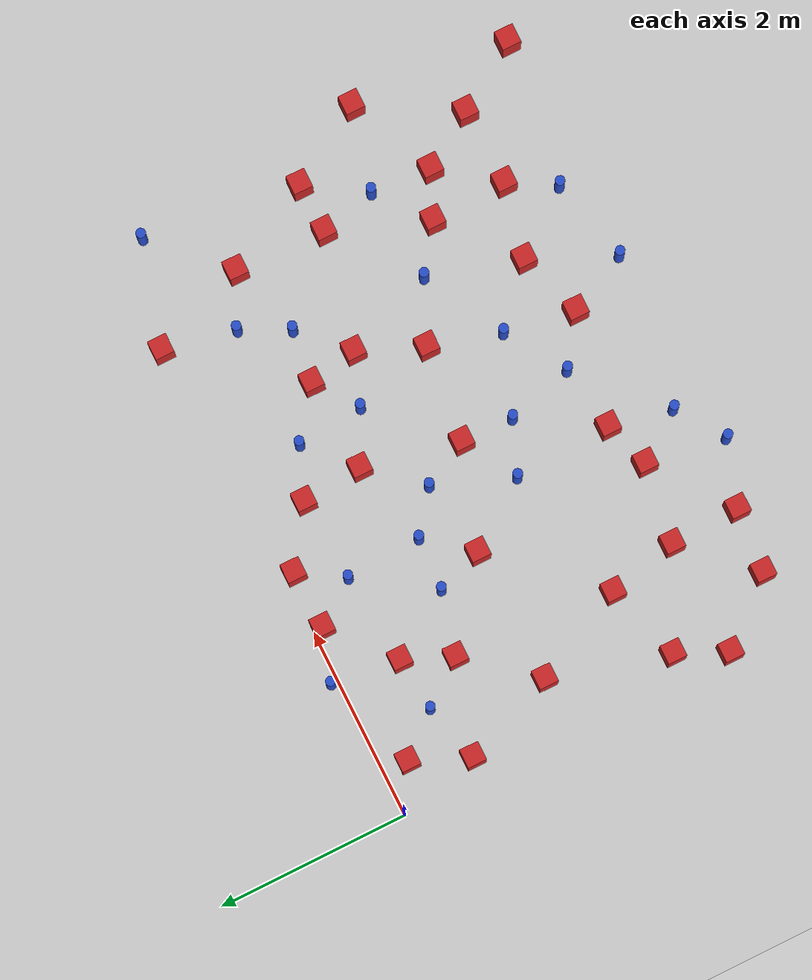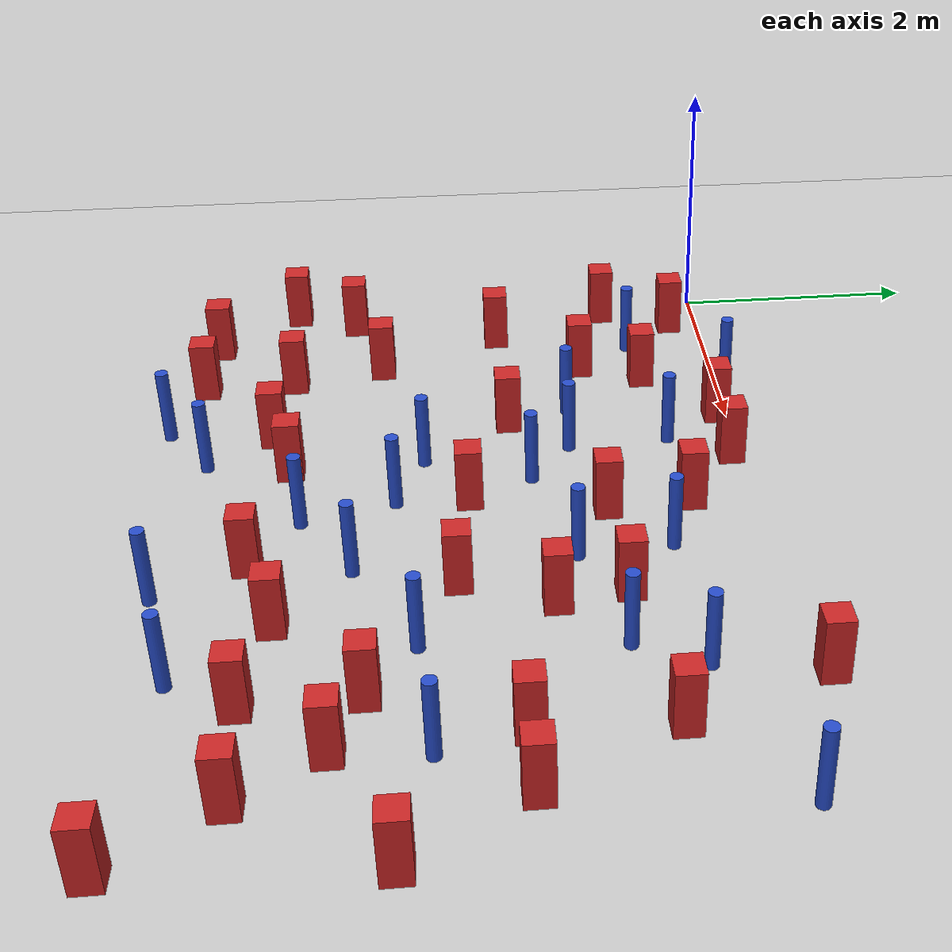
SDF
<sdf version="1.6">
 <world name="default">
  <model name="ground_plane">
   <static>1</static>
   <link name="link">
    <collision name="collision">
     <geometry><plane><normal>0 0 1</normal><size>100 100</size></plane></geometry>
     <surface><friction><ode><mu>100</mu><mu2>50</mu2></ode></friction></surface>
    </collision>
    <visual name="visual">
     <cast_shadows>0</cast_shadows>
     <geometry><plane><normal>0 0 1</normal><size>100 100</size></plane></geometry>
     <material>
      <ambient>1.0 1.0 1.0 1.0</ambient>
      <diffuse>0.8 0.8 0.8 1.0</diffuse>
      <specular>0.01 0.01 0.01 1.000000</specular>
     </material>
    </visual>
   </link>
  </model>
  <model name="NamedLocations">
   <static>true</static>
   <link name="DefaultStart"><pose>8.5 0 0 0 0 3.14</pose></link>
  </model>
  <model name="square_post_obstacle1">
   <static>true</static>
   <pose>2.530450691 -3.46873330275 -6.11067671241e-07 -5.50515727128e-06 -8.79689657224e-07 2.37013304536e-05</pose>
   <link name="link">
    <pose>0 0 0.25 0 -0 0</pose>
    <inertial>
     <mass>100</mass>
     <inertia>
      <ixx>0.166667</ixx>
      <ixy>0</ixy>
      <ixz>0</ixz>
      <iyy>0.166667</iyy>
      <iyz>0</iyz>
      <izz>0.166667</izz>
     </inertia>
    </inertial>
    <collision name="collision"><geometry><box><size>.2 .2 .5</size></box></geometry></collision>
    <visual name="visual">
     <geometry><box><size>.2 .2 .5</size></box></geometry>
     <material>
      <script><name>Gazebo/Red</name><uri>file://media/materials/scripts/gazebo.material</uri></script>
     </material>
    </visual>
   </link>
  </model>
  <model name="square_post_obstacle3">
   <static>true</static>
   <pose>5.13669039034 -3.62520895391 -6.11067671241e-07 -5.50515727128e-06 -8.79689657224e-07 2.37013304536e-05</pose>
   <link name="link">
    <pose>0 0 0.25 0 -0 0</pose>
    <inertial>
     <mass>100</mass>
     <inertia>
      <ixx>0.166667</ixx>
      <ixy>0</ixy>
      <ixz>0</ixz>
      <iyy>0.166667</iyy>
      <iyz>0</iyz>
      <izz>0.166667</izz>
     </inertia>
    </inertial>
    <collision name="collision"><geometry><box><size>.2 .2 .5</size></box></geometry></collision>
    <visual name="visual">
     <geometry><box><size>.2 .2 .5</size></box></geometry>
     <material>
      <script><name>Gazebo/Red</name><uri>file://media/materials/scripts/gazebo.material</uri></script>
     </material>
    </visual>
   </link>
  </model>
  <model name="pole_obstacle9">
   <static>true</static>
   <pose>3.01143764295 -2.66555143972 -9.47619616065e-06 5.49618799737e-07 2.36310414051e-07 -1.55090534807e-07</pose>
   <link name="link">
    <pose>0 0 0.3 0 -0 0</pose>
    <inertial>
     <mass>1</mass>
     <inertia><ixx>0.145833</ixx><ixy>0</ixy><ixz>0</ixz><iyy>0.145833</iyy><iyz>0</iyz><izz>0.125</izz></inertia>
    </inertial>
    <collision name="collision">
     <geometry><cylinder><radius>0.05</radius><length>.6</length></cylinder></geometry>
    </collision>
    <visual name="visual">
     <geometry><cylinder><radius>0.05</radius><length>.6</length></cylinder></geometry>
     <material>
      <script><name>Gazebo/Blue</name><uri>file://media/materials/scripts/gazebo.material</uri></script>
     </material>
    </visual>
   </link>
  </model>
  <model name="square_post_obstacle18">
   <static>true</static>
   <pose>5.49157595829 -1.83002905532 -6.11067671241e-07 -5.50515727128e-06 -8.79689657224e-07 2.37013304536e-05</pose>
   <link name="link">
    <pose>0 0 0.25 0 -0 0</pose>
    <inertial>
     <mass>100</mass>
     <inertia>
      <ixx>0.166667</ixx>
      <ixy>0</ixy>
      <ixz>0</ixz>
      <iyy>0.166667</iyy>
      <iyz>0</iyz>
      <izz>0.166667</izz>
     </inertia>
    </inertial>
    <collision name="collision"><geometry><box><size>.2 .2 .5</size></box></geometry></collision>
    <visual name="visual">
     <geometry><box><size>.2 .2 .5</size></box></geometry>
     <material>
      <script><name>Gazebo/Red</name><uri>file://media/materials/scripts/gazebo.material</uri></script>
     </material>
    </visual>
   </link>
  </model>
  <model name="pole_obstacle10">
   <static>true</static>
   <pose>3.98855867331 -4.32102343324 -9.47619616065e-06 5.49618799737e-07 2.36310414049e-07 -1.55090534808e-07</pose>
   <link name="link">
    <pose>0 0 0.3 0 -0 0</pose>
    <inertial>
     <mass>1</mass>
     <inertia><ixx>0.145833</ixx><ixy>0</ixy><ixz>0</ixz><iyy>0.145833</iyy><iyz>0</iyz><izz>0.125</izz></inertia>
    </inertial>
    <collision name="collision">
     <geometry><cylinder><radius>0.05</radius><length>.6</length></cylinder></geometry>
    </collision>
    <visual name="visual">
     <geometry><cylinder><radius>0.05</radius><length>.6</length></cylinder></geometry>
     <material>
      <script><name>Gazebo/Blue</name><uri>file://media/materials/scripts/gazebo.material</uri></script>
     </material>
    </visual>
   </link>
  </model>
  <model name="square_post_obstacle22">
   <static>true</static>
   <pose>0.462626099444 -0.256833321425 -6.11067671241e-07 -5.50515727128e-06 -8.79689657224e-07 2.37013304536e-05</pose>
   <link name="link">
    <pose>0 0 0.25 0 -0 0</pose>
    <inertial>
     <mass>100</mass>
     <inertia>
      <ixx>0.166667</ixx>
      <ixy>0</ixy>
      <ixz>0</ixz>
      <iyy>0.166667</iyy>
      <iyz>0</iyz>
      <izz>0.166667</izz>
     </inertia>
    </inertial>
    <collision name="collision"><geometry><box><size>.2 .2 .5</size></box></geometry></collision>
    <visual name="visual">
     <geometry><box><size>.2 .2 .5</size></box></geometry>
     <material>
      <script><name>Gazebo/Red</name><uri>file://media/materials/scripts/gazebo.material</uri></script>
     </material>
    </visual>
   </link>
  </model>
  <model name="pole_obstacle18">
   <static>true</static>
   <pose>4.64653328967 -2.50887436375 -9.47619616065e-06 5.49618799738e-07 2.36310414051e-07 -1.55090534805e-07</pose>
   <link name="link">
    <pose>0 0 0.3 0 -0 0</pose>
    <inertial>
     <mass>1</mass>
     <inertia><ixx>0.145833</ixx><ixy>0</ixy><ixz>0</ixz><iyy>0.145833</iyy><iyz>0</iyz><izz>0.125</izz></inertia>
    </inertial>
    <collision name="collision">
     <geometry><cylinder><radius>0.05</radius><length>.6</length></cylinder></geometry>
    </collision>
    <visual name="visual">
     <geometry><cylinder><radius>0.05</radius><length>.6</length></cylinder></geometry>
     <material>
      <script><name>Gazebo/Blue</name><uri>file://media/materials/scripts/gazebo.material</uri></script>
     </material>
    </visual>
   </link>
  </model>
  <model name="square_post_obstacle28">
   <static>true</static>
   <pose>3.1888105255 -0.476399686188 -6.11067671241e-07 -5.50515727128e-06 -8.79689657224e-07 2.37013304536e-05</pose>
   <link name="link">
    <pose>0 0 0.25 0 -0 0</pose>
    <inertial>
     <mass>100</mass>
     <inertia>
      <ixx>0.166667</ixx>
      <ixy>0</ixy>
      <ixz>0</ixz>
      <iyy>0.166667</iyy>
      <iyz>0</iyz>
      <izz>0.166667</izz>
     </inertia>
    </inertial>
    <collision name="collision"><geometry><box><size>.2 .2 .5</size></box></geometry></collision>
    <visual name="visual">
     <geometry><box><size>.2 .2 .5</size></box></geometry>
     <material>
      <script><name>Gazebo/Red</name><uri>file://media/materials/scripts/gazebo.material</uri></script>
     </material>
    </visual>
   </link>
  </model>
  <model name="pole_obstacle20">
   <static>true</static>
   <pose>1.46559739499 0.0808924018977 -9.47619616065e-06 5.49618799737e-07 2.36310414064e-07 -1.55090534797e-07</pose>
   <link name="link">
    <pose>0 0 0.3 0 -0 0</pose>
    <inertial>
     <mass>1</mass>
     <inertia><ixx>0.145833</ixx><ixy>0</ixy><ixz>0</ixz><iyy>0.145833</iyy><iyz>0</iyz><izz>0.125</izz></inertia>
    </inertial>
    <collision name="collision">
     <geometry><cylinder><radius>0.05</radius><length>.6</length></cylinder></geometry>
    </collision>
    <visual name="visual">
     <geometry><cylinder><radius>0.05</radius><length>.6</length></cylinder></geometry>
     <material>
      <script><name>Gazebo/Blue</name><uri>file://media/materials/scripts/gazebo.material</uri></script>
     </material>
    </visual>
   </link>
  </model>
  <model name="pole_obstacle28">
   <static>true</static>
   <pose>2.39489587303 -4.11712145658 -9.47619616065e-06 5.49618799738e-07 2.3631041406e-07 -1.55090534801e-07</pose>
   <link name="link">
    <pose>0 0 0.3 0 -0 0</pose>
    <inertial>
     <mass>1</mass>
     <inertia><ixx>0.145833</ixx><ixy>0</ixy><ixz>0</ixz><iyy>0.145833</iyy><iyz>0</iyz><izz>0.125</izz></inertia>
    </inertial>
    <collision name="collision">
     <geometry><cylinder><radius>0.05</radius><length>.6</length></cylinder></geometry>
    </collision>
    <visual name="visual">
     <geometry><cylinder><radius>0.05</radius><length>.6</length></cylinder></geometry>
     <material>
      <script><name>Gazebo/Blue</name><uri>file://media/materials/scripts/gazebo.material</uri></script>
     </material>
    </visual>
   </link>
  </model>
  <model name="pole_obstacle33">
   <static>true</static>
   <pose>2.36155503035 -1.31964789753 -9.47619616065e-06 5.49618799737e-07 2.36310414072e-07 -1.55090534793e-07</pose>
   <link name="link">
    <pose>0 0 0.3 0 -0 0</pose>
    <inertial>
     <mass>1</mass>
     <inertia><ixx>0.145833</ixx><ixy>0</ixy><ixz>0</ixz><iyy>0.145833</iyy><iyz>0</iyz><izz>0.125</izz></inertia>
    </inertial>
    <collision name="collision">
     <geometry><cylinder><radius>0.05</radius><length>.6</length></cylinder></geometry>
    </collision>
    <visual name="visual">
     <geometry><cylinder><radius>0.05</radius><length>.6</length></cylinder></geometry>
     <material>
      <script><name>Gazebo/Blue</name><uri>file://media/materials/scripts/gazebo.material</uri></script>
     </material>
    </visual>
   </link>
  </model>
  <model name="square_post_obstacle35">
   <static>true</static>
   <pose>5.9378352784 -3.60017342188 -6.11067671241e-07 -5.50515727128e-06 -8.79689657224e-07 2.37013304536e-05</pose>
   <link name="link">
    <pose>0 0 0.25 0 -0 0</pose>
    <inertial>
     <mass>100</mass>
     <inertia>
      <ixx>0.166667</ixx>
      <ixy>0</ixy>
      <ixz>0</ixz>
      <iyy>0.166667</iyy>
      <iyz>0</iyz>
      <izz>0.166667</izz>
     </inertia>
    </inertial>
    <collision name="collision"><geometry><box><size>.2 .2 .5</size></box></geometry></collision>
    <visual name="visual">
     <geometry><box><size>.2 .2 .5</size></box></geometry>
     <material>
      <script><name>Gazebo/Red</name><uri>file://media/materials/scripts/gazebo.material</uri></script>
     </material>
    </visual>
   </link>
  </model>
  <model name="square_post_obstacle38">
   <static>true</static>
   <pose>3.03342780745 -2.11965863603 -6.11067671241e-07 -5.50515727128e-06 -8.79689657224e-07 2.37013304536e-05</pose>
   <link name="link">
    <pose>0 0 0.25 0 -0 0</pose>
    <inertial>
     <mass>100</mass>
     <inertia>
      <ixx>0.166667</ixx>
      <ixy>0</ixy>
      <ixz>0</ixz>
      <iyy>0.166667</iyy>
      <iyz>0</iyz>
      <izz>0.166667</izz>
     </inertia>
    </inertial>
    <collision name="collision"><geometry><box><size>.2 .2 .5</size></box></geometry></collision>
    <visual name="visual">
     <geometry><box><size>.2 .2 .5</size></box></geometry>
     <material>
      <script><name>Gazebo/Red</name><uri>file://media/materials/scripts/gazebo.material</uri></script>
     </material>
    </visual>
   </link>
  </model>
  <model name="square_post_obstacle48">
   <static>true</static>
   <pose>0.214995687246 -0.84424231636 -6.11067671241e-07 -5.50515727128e-06 -8.79689657224e-07 2.37013304536e-05</pose>
   <link name="link">
    <pose>0 0 0.25 0 -0 0</pose>
    <inertial>
     <mass>100</mass>
     <inertia>
      <ixx>0.166667</ixx>
      <ixy>0</ixy>
      <ixz>0</ixz>
      <iyy>0.166667</iyy>
      <iyz>0</iyz>
      <izz>0.166667</izz>
     </inertia>
    </inertial>
    <collision name="collision"><geometry><box><size>.2 .2 .5</size></box></geometry></collision>
    <visual name="visual">
     <geometry><box><size>.2 .2 .5</size></box></geometry>
     <material>
      <script><name>Gazebo/Red</name><uri>file://media/materials/scripts/gazebo.material</uri></script>
     </material>
    </visual>
   </link>
  </model>
  <model name="square_post_obstacle51">
   <static>true</static>
   <pose>1.9908792539 -1.77615384395 -6.11067671241e-07 -5.50515727128e-06 -8.79689657224e-07 2.37013304536e-05</pose>
   <link name="link">
    <pose>0 0 0.25 0 -0 0</pose>
    <inertial>
     <mass>100</mass>
     <inertia>
      <ixx>0.166667</ixx>
      <ixy>0</ixy>
      <ixz>0</ixz>
      <iyy>0.166667</iyy>
      <iyz>0</iyz>
      <izz>0.166667</izz>
     </inertia>
    </inertial>
    <collision name="collision"><geometry><box><size>.2 .2 .5</size></box></geometry></collision>
    <visual name="visual">
     <geometry><box><size>.2 .2 .5</size></box></geometry>
     <material>
      <script><name>Gazebo/Red</name><uri>file://media/materials/scripts/gazebo.material</uri></script>
     </material>
    </visual>
   </link>
  </model>
  <model name="square_post_obstacle54">
   <static>true</static>
   <pose>6.3778067706 -4.2810340487 -6.11067671241e-07 -5.50515727128e-06 -8.79689657224e-07 2.37013304536e-05</pose>
   <link name="link">
    <pose>0 0 0.25 0 -0 0</pose>
    <inertial>
     <mass>100</mass>
     <inertia>
      <ixx>0.166667</ixx>
      <ixy>0</ixy>
      <ixz>0</ixz>
      <iyy>0.166667</iyy>
      <iyz>0</iyz>
      <izz>0.166667</izz>
     </inertia>
    </inertial>
    <collision name="collision"><geometry><box><size>.2 .2 .5</size></box></geometry></collision>
    <visual name="visual">
     <geometry><box><size>.2 .2 .5</size></box></geometry>
     <material>
      <script><name>Gazebo/Red</name><uri>file://media/materials/scripts/gazebo.material</uri></script>
     </material>
    </visual>
   </link>
  </model>
  <model name="pole_obstacle54">
   <static>true</static>
   <pose>3.19982292929 -3.35588220677 -9.47619616065e-06 5.49618799737e-07 2.36310414051e-07 -1.55090534807e-07</pose>
   <link name="link">
    <pose>0 0 0.3 0 -0 0</pose>
    <inertial>
     <mass>1</mass>
     <inertia><ixx>0.145833</ixx><ixy>0</ixy><ixz>0</ixz><iyy>0.145833</iyy><iyz>0</iyz><izz>0.125</izz></inertia>
    </inertial>
    <collision name="collision">
     <geometry><cylinder><radius>0.05</radius><length>.6</length></cylinder></geometry>
    </collision>
    <visual name="visual">
     <geometry><cylinder><radius>0.05</radius><length>.6</length></cylinder></geometry>
     <material>
      <script><name>Gazebo/Blue</name><uri>file://media/materials/scripts/gazebo.material</uri></script>
     </material>
    </visual>
   </link>
  </model>
  <model name="square_post_obstacle59">
   <static>true</static>
   <pose>2.04488197344 -3.62995855583 -6.11067671241e-07 -5.50515727128e-06 -8.79689657224e-07 2.37013304536e-05</pose>
   <link name="link">
    <pose>0 0 0.25 0 -0 0</pose>
    <inertial>
     <mass>100</mass>
     <inertia>
      <ixx>0.166667</ixx>
      <ixy>0</ixy>
      <ixz>0</ixz>
      <iyy>0.166667</iyy>
      <iyz>0</iyz>
      <izz>0.166667</izz>
     </inertia>
    </inertial>
    <collision name="collision"><geometry><box><size>.2 .2 .5</size></box></geometry></collision>
    <visual name="visual">
     <geometry><box><size>.2 .2 .5</size></box></geometry>
     <material>
      <script><name>Gazebo/Red</name><uri>file://media/materials/scripts/gazebo.material</uri></script>
     </material>
    </visual>
   </link>
  </model>
  <model name="pole_obstacle56">
   <static>true</static>
   <pose>2.77775229552 -1.63848089465 -9.47619616065e-06 5.49618799737e-07 2.36310414072e-07 -1.55090534793e-07</pose>
   <link name="link">
    <pose>0 0 0.3 0 -0 0</pose>
    <inertial>
     <mass>1</mass>
     <inertia><ixx>0.145833</ixx><ixy>0</ixy><ixz>0</ixz><iyy>0.145833</iyy><iyz>0</iyz><izz>0.125</izz></inertia>
    </inertial>
    <collision name="collision">
     <geometry><cylinder><radius>0.05</radius><length>.6</length></cylinder></geometry>
    </collision>
    <visual name="visual">
     <geometry><cylinder><radius>0.05</radius><length>.6</length></cylinder></geometry>
     <material>
      <script><name>Gazebo/Blue</name><uri>file://media/materials/scripts/gazebo.material</uri></script>
     </material>
    </visual>
   </link>
  </model>
  <model name="pole_obstacle66">
   <static>true</static>
   <pose>4.86580352075 -4.10169592997 -9.47619616065e-06 5.49618799737e-07 2.36310414037e-07 -1.55090534814e-07</pose>
   <link name="link">
    <pose>0 0 0.3 0 -0 0</pose>
    <inertial>
     <mass>1</mass>
     <inertia><ixx>0.145833</ixx><ixy>0</ixy><ixz>0</ixz><iyy>0.145833</iyy><iyz>0</iyz><izz>0.125</izz></inertia>
    </inertial>
    <collision name="collision">
     <geometry><cylinder><radius>0.05</radius><length>.6</length></cylinder></geometry>
    </collision>
    <visual name="visual">
     <geometry><cylinder><radius>0.05</radius><length>.6</length></cylinder></geometry>
     <material>
      <script><name>Gazebo/Blue</name><uri>file://media/materials/scripts/gazebo.material</uri></script>
     </material>
    </visual>
   </link>
  </model>
  <model name="square_post_obstacle70">
   <static>true</static>
   <pose>0.579308667818 -4.182951804 -6.11067671241e-07 -5.50515727128e-06 -8.79689657224e-07 2.37013304536e-05</pose>
   <link name="link">
    <pose>0 0 0.25 0 -0 0</pose>
    <inertial>
     <mass>100</mass>
     <inertia>
      <ixx>0.166667</ixx>
      <ixy>0</ixy>
      <ixz>0</ixz>
      <iyy>0.166667</iyy>
      <iyz>0</iyz>
      <izz>0.166667</izz>
     </inertia>
    </inertial>
    <collision name="collision"><geometry><box><size>.2 .2 .5</size></box></geometry></collision>
    <visual name="visual">
     <geometry><box><size>.2 .2 .5</size></box></geometry>
     <material>
      <script><name>Gazebo/Red</name><uri>file://media/materials/scripts/gazebo.material</uri></script>
     </material>
    </visual>
   </link>
  </model>
  <model name="pole_obstacle67">
   <static>true</static>
   <pose>3.77022128287 -1.37901961 -9.47619616065e-06 5.49618799737e-07 2.36310414072e-07 -1.55090534793e-07</pose>
   <link name="link">
    <pose>0 0 0.3 0 -0 0</pose>
    <inertial>
     <mass>1</mass>
     <inertia><ixx>0.145833</ixx><ixy>0</ixy><ixz>0</ixz><iyy>0.145833</iyy><iyz>0</iyz><izz>0.125</izz></inertia>
    </inertial>
    <collision name="collision">
     <geometry><cylinder><radius>0.05</radius><length>.6</length></cylinder></geometry>
    </collision>
    <visual name="visual">
     <geometry><cylinder><radius>0.05</radius><length>.6</length></cylinder></geometry>
     <material>
      <script><name>Gazebo/Blue</name><uri>file://media/materials/scripts/gazebo.material</uri></script>
     </material>
    </visual>
   </link>
  </model>
  <model name="pole_obstacle79">
   <static>true</static>
   <pose>3.8079375028 -2.96117190061 -9.47619616065e-06 5.49618799737e-07 2.36310414051e-07 -1.55090534807e-07</pose>
   <link name="link">
    <pose>0 0 0.3 0 -0 0</pose>
    <inertial>
     <mass>1</mass>
     <inertia><ixx>0.145833</ixx><ixy>0</ixy><ixz>0</ixz><iyy>0.145833</iyy><iyz>0</iyz><izz>0.125</izz></inertia>
    </inertial>
    <collision name="collision">
     <geometry><cylinder><radius>0.05</radius><length>.6</length></cylinder></geometry>
    </collision>
    <visual name="visual">
     <geometry><cylinder><radius>0.05</radius><length>.6</length></cylinder></geometry>
     <material>
      <script><name>Gazebo/Blue</name><uri>file://media/materials/scripts/gazebo.material</uri></script>
     </material>
    </visual>
   </link>
  </model>
  <model name="square_post_obstacle78">
   <static>true</static>
   <pose>4.02075072889 -2.2270808271 -6.11067671241e-07 -5.50515727128e-06 -8.79689657224e-07 2.37013304536e-05</pose>
   <link name="link">
    <pose>0 0 0.25 0 -0 0</pose>
    <inertial>
     <mass>100</mass>
     <inertia>
      <ixx>0.166667</ixx>
      <ixy>0</ixy>
      <ixz>0</ixz>
      <iyy>0.166667</iyy>
      <iyz>0</iyz>
      <izz>0.166667</izz>
     </inertia>
    </inertial>
    <collision name="collision"><geometry><box><size>.2 .2 .5</size></box></geometry></collision>
    <visual name="visual">
     <geometry><box><size>.2 .2 .5</size></box></geometry>
     <material>
      <script><name>Gazebo/Red</name><uri>file://media/materials/scripts/gazebo.material</uri></script>
     </material>
    </visual>
   </link>
  </model>
  <model name="pole_obstacle96">
   <static>true</static>
   <pose>0.817765265633 -0.680122438797 -9.47619616065e-06 5.49618799737e-07 2.36310414058e-07 -1.55090534802e-07</pose>
   <link name="link">
    <pose>0 0 0.3 0 -0 0</pose>
    <inertial>
     <mass>1</mass>
     <inertia><ixx>0.145833</ixx><ixy>0</ixy><ixz>0</ixz><iyy>0.145833</iyy><iyz>0</iyz><izz>0.125</izz></inertia>
    </inertial>
    <collision name="collision">
     <geometry><cylinder><radius>0.05</radius><length>.6</length></cylinder></geometry>
    </collision>
    <visual name="visual">
     <geometry><cylinder><radius>0.05</radius><length>.6</length></cylinder></geometry>
     <material>
      <script><name>Gazebo/Blue</name><uri>file://media/materials/scripts/gazebo.material</uri></script>
     </material>
    </visual>
   </link>
  </model>
  <model name="square_post_obstacle86">
   <static>true</static>
   <pose>4.37162158895 -3.46478738993 -6.11067671241e-07 -5.50515727128e-06 -8.79689657224e-07 2.37013304536e-05</pose>
   <link name="link">
    <pose>0 0 0.25 0 -0 0</pose>
    <inertial>
     <mass>100</mass>
     <inertia>
      <ixx>0.166667</ixx>
      <ixy>0</ixy>
      <ixz>0</ixz>
      <iyy>0.166667</iyy>
      <iyz>0</iyz>
      <izz>0.166667</izz>
     </inertia>
    </inertial>
    <collision name="collision"><geometry><box><size>.2 .2 .5</size></box></geometry></collision>
    <visual name="visual">
     <geometry><box><size>.2 .2 .5</size></box></geometry>
     <material>
      <script><name>Gazebo/Red</name><uri>file://media/materials/scripts/gazebo.material</uri></script>
     </material>
    </visual>
   </link>
  </model>
  <model name="pole_obstacle105">
   <static>true</static>
   <pose>3.70730179866 -0.684407752804 -9.47619616065e-06 5.49618799738e-07 2.36310414075e-07 -1.55090534793e-07</pose>
   <link name="link">
    <pose>0 0 0.3 0 -0 0</pose>
    <inertial>
     <mass>1</mass>
     <inertia><ixx>0.145833</ixx><ixy>0</ixy><ixz>0</ixz><iyy>0.145833</iyy><iyz>0</iyz><izz>0.125</izz></inertia>
    </inertial>
    <collision name="collision">
     <geometry><cylinder><radius>0.05</radius><length>.6</length></cylinder></geometry>
    </collision>
    <visual name="visual">
     <geometry><cylinder><radius>0.05</radius><length>.6</length></cylinder></geometry>
     <material>
      <script><name>Gazebo/Blue</name><uri>file://media/materials/scripts/gazebo.material</uri></script>
     </material>
    </visual>
   </link>
  </model>
  <model name="pole_obstacle109">
   <static>true</static>
   <pose>1.81429087922 -1.29407775832 -9.47619616065e-06 5.49618799737e-07 2.36310414065e-07 -1.55090534798e-07</pose>
   <link name="link">
    <pose>0 0 0.3 0 -0 0</pose>
    <inertial>
     <mass>1</mass>
     <inertia><ixx>0.145833</ixx><ixy>0</ixy><ixz>0</ixz><iyy>0.145833</iyy><iyz>0</iyz><izz>0.125</izz></inertia>
    </inertial>
    <collision name="collision">
     <geometry><cylinder><radius>0.05</radius><length>.6</length></cylinder></geometry>
    </collision>
    <visual name="visual">
     <geometry><cylinder><radius>0.05</radius><length>.6</length></cylinder></geometry>
     <material>
      <script><name>Gazebo/Blue</name><uri>file://media/materials/scripts/gazebo.material</uri></script>
     </material>
    </visual>
   </link>
  </model>
  <model name="pole_obstacle111">
   <static>true</static>
   <pose>6.22150066063 -0.200314498505 -9.47619616065e-06 5.49618799737e-07 2.36310414066e-07 -1.55090534799e-07</pose>
   <link name="link">
    <pose>0 0 0.3 0 -0 0</pose>
    <inertial>
     <mass>1</mass>
     <inertia><ixx>0.145833</ixx><ixy>0</ixy><ixz>0</ixz><iyy>0.145833</iyy><iyz>0</iyz><izz>0.125</izz></inertia>
    </inertial>
    <collision name="collision">
     <geometry><cylinder><radius>0.05</radius><length>.6</length></cylinder></geometry>
    </collision>
    <visual name="visual">
     <geometry><cylinder><radius>0.05</radius><length>.6</length></cylinder></geometry>
     <material>
      <script><name>Gazebo/Blue</name><uri>file://media/materials/scripts/gazebo.material</uri></script>
     </material>
    </visual>
   </link>
  </model>
  <model name="square_post_obstacle106">
   <static>true</static>
   <pose>0.590769651061 -1.81125327864 -6.11067671241e-07 -5.50515727128e-06 -8.79689657224e-07 2.37013304536e-05</pose>
   <link name="link">
    <pose>0 0 0.25 0 -0 0</pose>
    <inertial>
     <mass>100</mass>
     <inertia>
      <ixx>0.166667</ixx>
      <ixy>0</ixy>
      <ixz>0</ixz>
      <iyy>0.166667</iyy>
      <iyz>0</iyz>
      <izz>0.166667</izz>
     </inertia>
    </inertial>
    <collision name="collision"><geometry><box><size>.2 .2 .5</size></box></geometry></collision>
    <visual name="visual">
     <geometry><box><size>.2 .2 .5</size></box></geometry>
     <material>
      <script><name>Gazebo/Red</name><uri>file://media/materials/scripts/gazebo.material</uri></script>
     </material>
    </visual>
   </link>
  </model>
  <model name="pole_obstacle140">
   <static>true</static>
   <pose>1.90972837933 -4.4588079517 -9.47619616065e-06 5.49618799737e-07 2.36310414061e-07 -1.550905348e-07</pose>
   <link name="link">
    <pose>0 0 0.3 0 -0 0</pose>
    <inertial>
     <mass>1</mass>
     <inertia><ixx>0.145833</ixx><ixy>0</ixy><ixz>0</ixz><iyy>0.145833</iyy><iyz>0</iyz><izz>0.125</izz></inertia>
    </inertial>
    <collision name="collision">
     <geometry><cylinder><radius>0.05</radius><length>.6</length></cylinder></geometry>
    </collision>
    <visual name="visual">
     <geometry><cylinder><radius>0.05</radius><length>.6</length></cylinder></geometry>
     <material>
      <script><name>Gazebo/Blue</name><uri>file://media/materials/scripts/gazebo.material</uri></script>
     </material>
    </visual>
   </link>
  </model>
  <model name="square_post_obstacle128">
   <static>true</static>
   <pose>5.58193976574 -3.04170342644 -6.11067671241e-07 -5.50515727128e-06 -8.79689657224e-07 2.37013304536e-05</pose>
   <link name="link">
    <pose>0 0 0.25 0 -0 0</pose>
    <inertial>
     <mass>100</mass>
     <inertia>
      <ixx>0.166667</ixx>
      <ixy>0</ixy>
      <ixz>0</ixz>
      <iyy>0.166667</iyy>
      <iyz>0</iyz>
      <izz>0.166667</izz>
     </inertia>
    </inertial>
    <collision name="collision"><geometry><box><size>.2 .2 .5</size></box></geometry></collision>
    <visual name="visual">
     <geometry><box><size>.2 .2 .5</size></box></geometry>
     <material>
      <script><name>Gazebo/Red</name><uri>file://media/materials/scripts/gazebo.material</uri></script>
     </material>
    </visual>
   </link>
  </model>
  <model name="square_post_obstacle134">
   <static>true</static>
   <pose>2.60720940173 -0.0781172429536 -6.11067671241e-07 -5.50515727128e-06 -8.79689657224e-07 2.37013304536e-05</pose>
   <link name="link">
    <pose>0 0 0.25 0 -0 0</pose>
    <inertial>
     <mass>100</mass>
     <inertia>
      <ixx>0.166667</ixx>
      <ixy>0</ixy>
      <ixz>0</ixz>
      <iyy>0.166667</iyy>
      <iyz>0</iyz>
      <izz>0.166667</izz>
     </inertia>
    </inertial>
    <collision name="collision"><geometry><box><size>.2 .2 .5</size></box></geometry></collision>
    <visual name="visual">
     <geometry><box><size>.2 .2 .5</size></box></geometry>
     <material>
      <script><name>Gazebo/Red</name><uri>file://media/materials/scripts/gazebo.material</uri></script>
     </material>
    </visual>
   </link>
  </model>
  <model name="square_post_obstacle140">
   <static>true</static>
   <pose>1.22052828877 -3.51317445098 -6.11067671241e-07 -5.50515727128e-06 -8.79689657224e-07 2.37013304536e-05</pose>
   <link name="link">
    <pose>0 0 0.25 0 -0 0</pose>
    <inertial>
     <mass>100</mass>
     <inertia>
      <ixx>0.166667</ixx>
      <ixy>0</ixy>
      <ixz>0</ixz>
      <iyy>0.166667</iyy>
      <iyz>0</iyz>
      <izz>0.166667</izz>
     </inertia>
    </inertial>
    <collision name="collision"><geometry><box><size>.2 .2 .5</size></box></geometry></collision>
    <visual name="visual">
     <geometry><box><size>.2 .2 .5</size></box></geometry>
     <material>
      <script><name>Gazebo/Red</name><uri>file://media/materials/scripts/gazebo.material</uri></script>
     </material>
    </visual>
   </link>
  </model>
  <model name="pole_obstacle152">
   <static>true</static>
   <pose>2.47266639411 -2.45084469625 -9.47619616065e-06 5.49618799737e-07 2.36310414051e-07 -1.55090534807e-07</pose>
   <link name="link">
    <pose>0 0 0.3 0 -0 0</pose>
    <inertial>
     <mass>1</mass>
     <inertia><ixx>0.145833</ixx><ixy>0</ixy><ixz>0</ixz><iyy>0.145833</iyy><iyz>0</iyz><izz>0.125</izz></inertia>
    </inertial>
    <collision name="collision">
     <geometry><cylinder><radius>0.05</radius><length>.6</length></cylinder></geometry>
    </collision>
    <visual name="visual">
     <geometry><cylinder><radius>0.05</radius><length>.6</length></cylinder></geometry>
     <material>
      <script><name>Gazebo/Blue</name><uri>file://media/materials/scripts/gazebo.material</uri></script>
     </material>
    </visual>
   </link>
  </model>
  <model name="square_post_obstacle146">
   <static>true</static>
   <pose>0.254950482168 -3.04113927188 -6.11067671241e-07 -5.50515727128e-06 -8.79689657224e-07 2.37013304536e-05</pose>
   <link name="link">
    <pose>0 0 0.25 0 -0 0</pose>
    <inertial>
     <mass>100</mass>
     <inertia>
      <ixx>0.166667</ixx>
      <ixy>0</ixy>
      <ixz>0</ixz>
      <iyy>0.166667</iyy>
      <iyz>0</iyz>
      <izz>0.166667</izz>
     </inertia>
    </inertial>
    <collision name="collision"><geometry><box><size>.2 .2 .5</size></box></geometry></collision>
    <visual name="visual">
     <geometry><box><size>.2 .2 .5</size></box></geometry>
     <material>
      <script><name>Gazebo/Red</name><uri>file://media/materials/scripts/gazebo.material</uri></script>
     </material>
    </visual>
   </link>
  </model>
  <model name="pole_obstacle156">
   <static>true</static>
   <pose>5.62671210483 -2.41471300182 -9.47619616065e-06 5.49618799738e-07 2.36310414051e-07 -1.55090534805e-07</pose>
   <link name="link">
    <pose>0 0 0.3 0 -0 0</pose>
    <inertial>
     <mass>1</mass>
     <inertia><ixx>0.145833</ixx><ixy>0</ixy><ixz>0</ixz><iyy>0.145833</iyy><iyz>0</iyz><izz>0.125</izz></inertia>
    </inertial>
    <collision name="collision">
     <geometry><cylinder><radius>0.05</radius><length>.6</length></cylinder></geometry>
    </collision>
    <visual name="visual">
     <geometry><cylinder><radius>0.05</radius><length>.6</length></cylinder></geometry>
     <material>
      <script><name>Gazebo/Blue</name><uri>file://media/materials/scripts/gazebo.material</uri></script>
     </material>
    </visual>
   </link>
  </model>
  <model name="square_post_obstacle151">
   <static>true</static>
   <pose>6.0041639893 -1.81676614644 -6.11067671241e-07 -5.50515727128e-06 -8.79689657224e-07 2.37013304536e-05</pose>
   <link name="link">
    <pose>0 0 0.25 0 -0 0</pose>
    <inertial>
     <mass>100</mass>
     <inertia>
      <ixx>0.166667</ixx>
      <ixy>0</ixy>
      <ixz>0</ixz>
      <iyy>0.166667</iyy>
      <iyz>0</iyz>
      <izz>0.166667</izz>
     </inertia>
    </inertial>
    <collision name="collision"><geometry><box><size>.2 .2 .5</size></box></geometry></collision>
    <visual name="visual">
     <geometry><box><size>.2 .2 .5</size></box></geometry>
     <material>
      <script><name>Gazebo/Red</name><uri>file://media/materials/scripts/gazebo.material</uri></script>
     </material>
    </visual>
   </link>
  </model>
  <model name="pole_obstacle157">
   <static>true</static>
   <pose>4.7485403112 -1.12218845521 -9.47619616065e-06 5.49618799738e-07 2.36310414071e-07 -1.55090534796e-07</pose>
   <link name="link">
    <pose>0 0 0.3 0 -0 0</pose>
    <inertial>
     <mass>1</mass>
     <inertia><ixx>0.145833</ixx><ixy>0</ixy><ixz>0</ixz><iyy>0.145833</iyy><iyz>0</iyz><izz>0.125</izz></inertia>
    </inertial>
    <collision name="collision">
     <geometry><cylinder><radius>0.05</radius><length>.6</length></cylinder></geometry>
    </collision>
    <visual name="visual">
     <geometry><cylinder><radius>0.05</radius><length>.6</length></cylinder></geometry>
     <material>
      <script><name>Gazebo/Blue</name><uri>file://media/materials/scripts/gazebo.material</uri></script>
     </material>
    </visual>
   </link>
  </model>
  <model name="square_post_obstacle158">
   <static>true</static>
   <pose>1.24601541618 -4.23775887523 -6.11067671241e-07 -5.50515727128e-06 -8.79689657224e-07 2.37013304536e-05</pose>
   <link name="link">
    <pose>0 0 0.25 0 -0 0</pose>
    <inertial>
     <mass>100</mass>
     <inertia>
      <ixx>0.166667</ixx>
      <ixy>0</ixy>
      <ixz>0</ixz>
      <iyy>0.166667</iyy>
      <iyz>0</iyz>
      <izz>0.166667</izz>
     </inertia>
    </inertial>
    <collision name="collision"><geometry><box><size>.2 .2 .5</size></box></geometry></collision>
    <visual name="visual">
     <geometry><box><size>.2 .2 .5</size></box></geometry>
     <material>
      <script><name>Gazebo/Red</name><uri>file://media/materials/scripts/gazebo.material</uri></script>
     </material>
    </visual>
   </link>
  </model>
  <model name="pole_obstacle170">
   <static>true</static>
   <pose>2.32034469067 -0.529623512524 -9.47619616065e-06 5.49618799737e-07 2.36310414075e-07 -1.55090534792e-07</pose>
   <link name="link">
    <pose>0 0 0.3 0 -0 0</pose>
    <inertial>
     <mass>1</mass>
     <inertia><ixx>0.145833</ixx><ixy>0</ixy><ixz>0</ixz><iyy>0.145833</iyy><iyz>0</iyz><izz>0.125</izz></inertia>
    </inertial>
    <collision name="collision">
     <geometry><cylinder><radius>0.05</radius><length>.6</length></cylinder></geometry>
    </collision>
    <visual name="visual">
     <geometry><cylinder><radius>0.05</radius><length>.6</length></cylinder></geometry>
     <material>
      <script><name>Gazebo/Blue</name><uri>file://media/materials/scripts/gazebo.material</uri></script>
     </material>
    </visual>
   </link>
  </model>
  <model name="square_post_obstacle161">
   <static>true</static>
   <pose>1.05527607468 -2.78813897819 -6.11067671241e-07 -5.50515727128e-06 -8.79689657224e-07 2.37013304536e-05</pose>
   <link name="link">
    <pose>0 0 0.25 0 -0 0</pose>
    <inertial>
     <mass>100</mass>
     <inertia>
      <ixx>0.166667</ixx>
      <ixy>0</ixy>
      <ixz>0</ixz>
      <iyy>0.166667</iyy>
      <iyz>0</iyz>
      <izz>0.166667</izz>
     </inertia>
    </inertial>
    <collision name="collision"><geometry><box><size>.2 .2 .5</size></box></geometry></collision>
    <visual name="visual">
     <geometry><box><size>.2 .2 .5</size></box></geometry>
     <material>
      <script><name>Gazebo/Red</name><uri>file://media/materials/scripts/gazebo.material</uri></script>
     </material>
    </visual>
   </link>
  </model>
  <model name="pole_obstacle187">
   <static>true</static>
   <pose>4.99220451292 -0.633951440354 -9.47619616065e-06 5.49618799737e-07 2.36310414061e-07 -1.550905348e-07</pose>
   <link name="link">
    <pose>0 0 0.3 0 -0 0</pose>
    <inertial>
     <mass>1</mass>
     <inertia><ixx>0.145833</ixx><ixy>0</ixy><ixz>0</ixz><iyy>0.145833</iyy><iyz>0</iyz><izz>0.125</izz></inertia>
    </inertial>
    <collision name="collision">
     <geometry><cylinder><radius>0.05</radius><length>.6</length></cylinder></geometry>
    </collision>
    <visual name="visual">
     <geometry><cylinder><radius>0.05</radius><length>.6</length></cylinder></geometry>
     <material>
      <script><name>Gazebo/Blue</name><uri>file://media/materials/scripts/gazebo.material</uri></script>
     </material>
    </visual>
   </link>
  </model>
  <model name="square_post_obstacle176">
   <static>true</static>
   <pose>3.2434331373 -1.11058273007 -6.11067671241e-07 -5.50515727128e-06 -8.79689657224e-07 2.37013304536e-05</pose>
   <link name="link">
    <pose>0 0 0.25 0 -0 0</pose>
    <inertial>
     <mass>100</mass>
     <inertia>
      <ixx>0.166667</ixx>
      <ixy>0</ixy>
      <ixz>0</ixz>
      <iyy>0.166667</iyy>
      <iyz>0</iyz>
      <izz>0.166667</izz>
     </inertia>
    </inertial>
    <collision name="collision"><geometry><box><size>.2 .2 .5</size></box></geometry></collision>
    <visual name="visual">
     <geometry><box><size>.2 .2 .5</size></box></geometry>
     <material>
      <script><name>Gazebo/Red</name><uri>file://media/materials/scripts/gazebo.material</uri></script>
     </material>
    </visual>
   </link>
  </model>
  <model name="square_post_obstacle179">
   <static>true</static>
   <pose>6.48542112934 -2.62446747956 -6.11067671241e-07 -5.50515727128e-06 -8.79689657224e-07 2.37013304536e-05</pose>
   <link name="link">
    <pose>0 0 0.25 0 -0 0</pose>
    <inertial>
     <mass>100</mass>
     <inertia>
      <ixx>0.166667</ixx>
      <ixy>0</ixy>
      <ixz>0</ixz>
      <iyy>0.166667</iyy>
      <iyz>0</iyz>
      <izz>0.166667</izz>
     </inertia>
    </inertial>
    <collision name="collision"><geometry><box><size>.2 .2 .5</size></box></geometry></collision>
    <visual name="visual">
     <geometry><box><size>.2 .2 .5</size></box></geometry>
     <material>
      <script><name>Gazebo/Red</name><uri>file://media/materials/scripts/gazebo.material</uri></script>
     </material>
    </visual>
   </link>
  </model>
  <model name="square_post_obstacle182">
   <static>true</static>
   <pose>5.14494103005 0.115193792667 -6.11067671241e-07 -5.50515727128e-06 -8.79689657224e-07 2.37013304536e-05</pose>
   <link name="link">
    <pose>0 0 0.25 0 -0 0</pose>
    <inertial>
     <mass>100</mass>
     <inertia>
      <ixx>0.166667</ixx>
      <ixy>0</ixy>
      <ixz>0</ixz>
      <iyy>0.166667</iyy>
      <iyz>0</iyz>
      <izz>0.166667</izz>
     </inertia>
    </inertial>
    <collision name="collision"><geometry><box><size>.2 .2 .5</size></box></geometry></collision>
    <visual name="visual">
     <geometry><box><size>.2 .2 .5</size></box></geometry>
     <material>
      <script><name>Gazebo/Red</name><uri>file://media/materials/scripts/gazebo.material</uri></script>
     </material>
    </visual>
   </link>
  </model>
  <model name="square_post_obstacle191">
   <static>true</static>
   <pose>4.29982428226 -1.56616913559 -6.11067671241e-07 -5.50515727128e-06 -8.79689657224e-07 2.37013304536e-05</pose>
   <link name="link">
    <pose>0 0 0.25 0 -0 0</pose>
    <inertial>
     <mass>100</mass>
     <inertia>
      <ixx>0.166667</ixx>
      <ixy>0</ixy>
      <ixz>0</ixz>
      <iyy>0.166667</iyy>
      <iyz>0</iyz>
      <izz>0.166667</izz>
     </inertia>
    </inertial>
    <collision name="collision"><geometry><box><size>.2 .2 .5</size></box></geometry></collision>
    <visual name="visual">
     <geometry><box><size>.2 .2 .5</size></box></geometry>
     <material>
      <script><name>Gazebo/Red</name><uri>file://media/materials/scripts/gazebo.material</uri></script>
     </material>
    </visual>
   </link>
  </model>
  <model name="square_post_obstacle193">
   <static>true</static>
   <pose>1.38212316453 -0.628554670417 -6.11067671241e-07 -5.50515727128e-06 -8.79689657224e-07 2.37013304536e-05</pose>
   <link name="link">
    <pose>0 0 0.25 0 -0 0</pose>
    <inertial>
     <mass>100</mass>
     <inertia>
      <ixx>0.166667</ixx>
      <ixy>0</ixy>
      <ixz>0</ixz>
      <iyy>0.166667</iyy>
      <iyz>0</iyz>
      <izz>0.166667</izz>
     </inertia>
    </inertial>
    <collision name="collision"><geometry><box><size>.2 .2 .5</size></box></geometry></collision>
    <visual name="visual">
     <geometry><box><size>.2 .2 .5</size></box></geometry>
     <material>
      <script><name>Gazebo/Red</name><uri>file://media/materials/scripts/gazebo.material</uri></script>
     </material>
    </visual>
   </link>
  </model>
  <model name="square_post_obstacle216">
   <static>true</static>
   <pose>1.17049249368 -1.12701332599 -6.11067671241e-07 -5.50515727128e-06 -8.79689657224e-07 2.37013304536e-05</pose>
   <link name="link">
    <pose>0 0 0.25 0 -0 0</pose>
    <inertial>
     <mass>100</mass>
     <inertia>
      <ixx>0.166667</ixx>
      <ixy>0</ixy>
      <ixz>0</ixz>
      <iyy>0.166667</iyy>
      <iyz>0</iyz>
      <izz>0.166667</izz>
     </inertia>
    </inertial>
    <collision name="collision"><geometry><box><size>.2 .2 .5</size></box></geometry></collision>
    <visual name="visual">
     <geometry><box><size>.2 .2 .5</size></box></geometry>
     <material>
      <script><name>Gazebo/Red</name><uri>file://media/materials/scripts/gazebo.material</uri></script>
     </material>
    </visual>
   </link>
  </model>
  <model name="square_post_obstacle222">
   <static>true</static>
   <pose>3.6920199502 -3.69260002312 -6.11067671241e-07 -5.50515727128e-06 -8.79689657224e-07 2.37013304536e-05</pose>
   <link name="link">
    <pose>0 0 0.25 0 -0 0</pose>
    <inertial>
     <mass>100</mass>
     <inertia>
      <ixx>0.166667</ixx>
      <ixy>0</ixy>
      <ixz>0</ixz>
      <iyy>0.166667</iyy>
      <iyz>0</iyz>
      <izz>0.166667</izz>
     </inertia>
    </inertial>
    <collision name="collision"><geometry><box><size>.2 .2 .5</size></box></geometry></collision>
    <visual name="visual">
     <geometry><box><size>.2 .2 .5</size></box></geometry>
     <material>
      <script><name>Gazebo/Red</name><uri>file://media/materials/scripts/gazebo.material</uri></script>
     </material>
    </visual>
   </link>
  </model>
  <model name="square_post_obstacle223">
   <static>true</static>
   <pose>0.0227139502031 -3.55221002312 -6.11067671241e-07 -5.50515727128e-06 -8.79689657224e-07 2.37013304536e-05</pose>
   <link name="link">
    <pose>0 0 0.25 0 -0 0</pose>
    <inertial>
     <mass>100</mass>
     <inertia>
      <ixx>0.166667</ixx>
      <ixy>0</ixy>
      <ixz>0</ixz>
      <iyy>0.166667</iyy>
      <iyz>0</iyz>
      <izz>0.166667</izz>
     </inertia>
    </inertial>
    <collision name="collision"><geometry><box><size>.2 .2 .5</size></box></geometry></collision>
    <visual name="visual">
     <geometry><box><size>.2 .2 .5</size></box></geometry>
     <material>
      <script><name>Gazebo/Red</name><uri>file://media/materials/scripts/gazebo.material</uri></script>
     </material>
    </visual>
   </link>
  </model>
  <model name="square_post_obstacle224">
   <static>true</static>
   <pose>5.5256699502 -0.882607023122 -6.11067671241e-07 -5.50515727128e-06 -8.79689657224e-07 2.37013304536e-05</pose>
   <link name="link">
    <pose>0 0 0.25 0 -0 0</pose>
    <inertial>
     <mass>100</mass>
     <inertia>
      <ixx>0.166667</ixx>
      <ixy>0</ixy>
      <ixz>0</ixz>
      <iyy>0.166667</iyy>
      <iyz>0</iyz>
      <izz>0.166667</izz>
     </inertia>
    </inertial>
    <collision name="collision"><geometry><box><size>.2 .2 .5</size></box></geometry></collision>
    <visual name="visual">
     <geometry><box><size>.2 .2 .5</size></box></geometry>
     <material>
      <script><name>Gazebo/Red</name><uri>file://media/materials/scripts/gazebo.material</uri></script>
     </material>
    </visual>
   </link>
  </model>
  <model name="square_post_obstacle232">
   <static>true</static>
   <pose>5.1105899502 -2.83520002312 -6.11067671241e-07 -5.50515727128e-06 -8.79689657224e-07 2.37013304536e-05</pose>
   <link name="link">
    <pose>0 0 0.25 0 -0 0</pose>
    <inertial>
     <mass>100</mass>
     <inertia>
      <ixx>0.166667</ixx>
      <ixy>0</ixy>
      <ixz>0</ixz>
      <iyy>0.166667</iyy>
      <iyz>0</iyz>
      <izz>0.166667</izz>
     </inertia>
    </inertial>
    <collision name="collision"><geometry><box><size>.2 .2 .5</size></box></geometry></collision>
    <visual name="visual">
     <geometry><box><size>.2 .2 .5</size></box></geometry>
     <material>
      <script><name>Gazebo/Red</name><uri>file://media/materials/scripts/gazebo.material</uri></script>
     </material>
    </visual>
   </link>
  </model>
  <model name="square_post_obstacle234">
   <static>true</static>
   <pose>4.2038999502 -1.05946002312 -6.11067671241e-07 -5.50515727128e-06 -8.79689657224e-07 2.37013304536e-05</pose>
   <link name="link">
    <pose>0 0 0.25 0 -0 0</pose>
    <inertial>
     <mass>100</mass>
     <inertia>
      <ixx>0.166667</ixx>
      <ixy>0</ixy>
      <ixz>0</ixz>
      <iyy>0.166667</iyy>
      <iyz>0</iyz>
      <izz>0.166667</izz>
     </inertia>
    </inertial>
    <collision name="collision"><geometry><box><size>.2 .2 .5</size></box></geometry></collision>
    <visual name="visual">
     <geometry><box><size>.2 .2 .5</size></box></geometry>
     <material>
      <script><name>Gazebo/Red</name><uri>file://media/materials/scripts/gazebo.material</uri></script>
     </material>
    </visual>
   </link>
  </model>
  <model name="square_post_obstacle238">
   <static>true</static>
   <pose>2.0047299502 -0.0911730231221 -6.11067671241e-07 -5.50515727128e-06 -8.79689657224e-07 2.37013304536e-05</pose>
   <link name="link">
    <pose>0 0 0.25 0 -0 0</pose>
    <inertial>
     <mass>100</mass>
     <inertia>
      <ixx>0.166667</ixx>
      <ixy>0</ixy>
      <ixz>0</ixz>
      <iyy>0.166667</iyy>
      <iyz>0</iyz>
      <izz>0.166667</izz>
     </inertia>
    </inertial>
    <collision name="collision"><geometry><box><size>.2 .2 .5</size></box></geometry></collision>
    <visual name="visual">
     <geometry><box><size>.2 .2 .5</size></box></geometry>
     <material>
      <script><name>Gazebo/Red</name><uri>file://media/materials/scripts/gazebo.material</uri></script>
     </material>
    </visual>
   </link>
  </model>
 </world>
</sdf>
